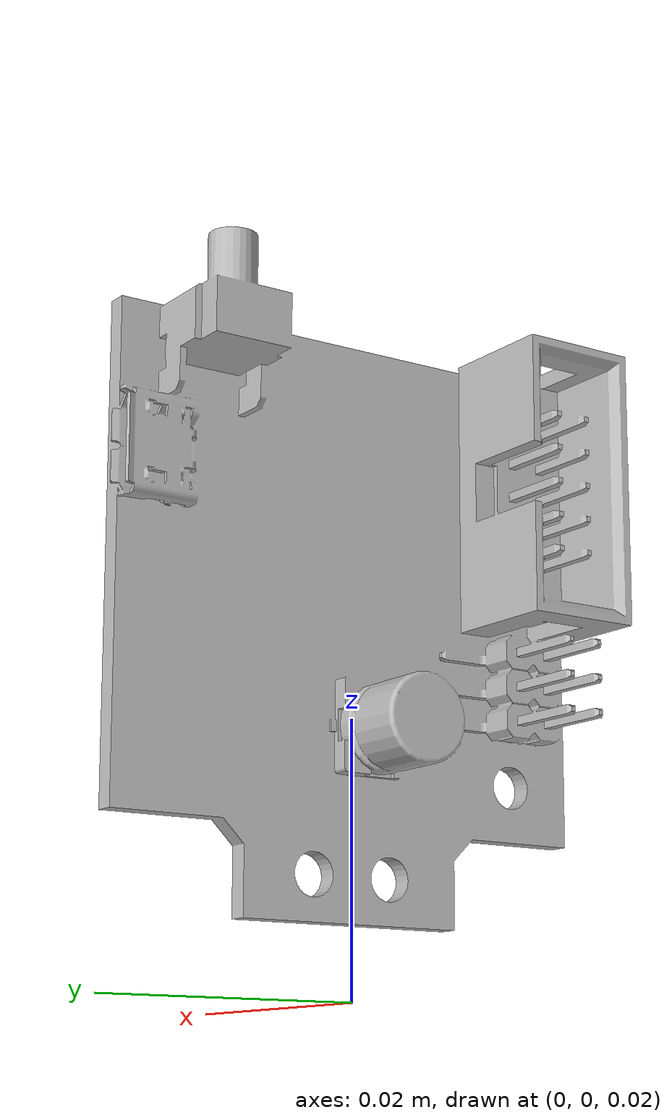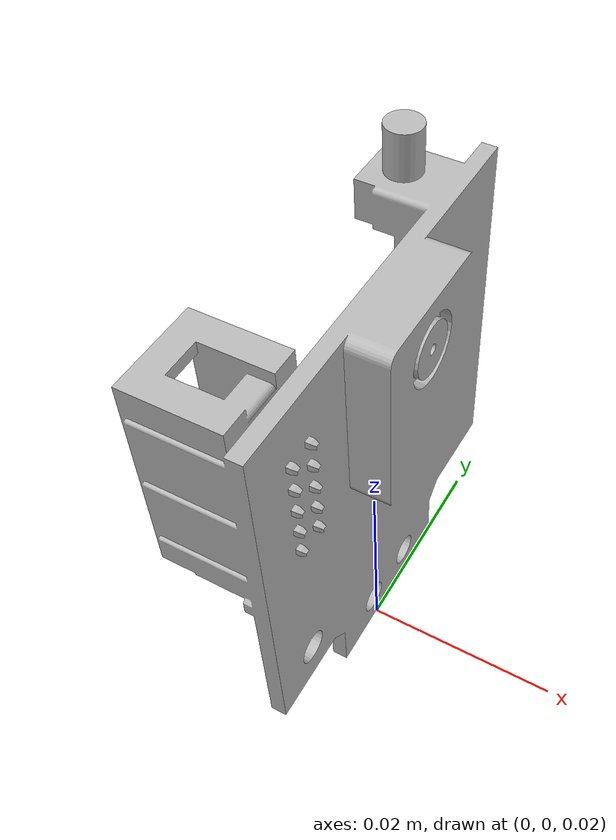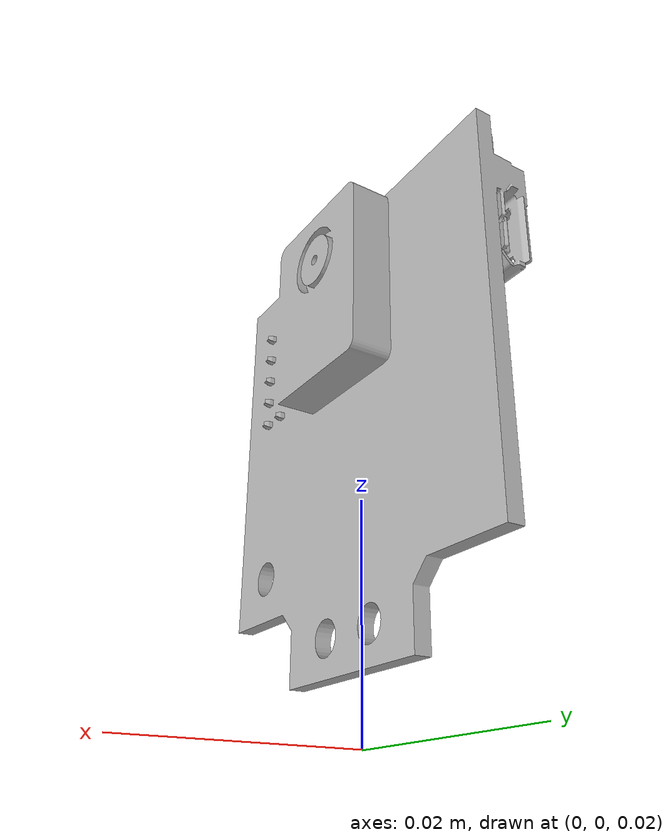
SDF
<?xml version='1.0' ?>
<sdf version='1.5'>
  <model name='frontcam'>
  	<pose>0 0 .05 0 0 0</pose>
    <static>false</static>
    <link name="frontcam_link">
      <visual name="frontcam_visual">
        <pose>0 0 0 1.57079632679 0 1.57079632679</pose>
        <geometry>
          <mesh>
            <uri>model://frontcam/meshes/frontcam.obj</uri>
            <scale>.001 .001 .001</scale>
          </mesh>
        </geometry>
      </visual>
      <!--Image sensor: Aptina MT9M114-->
      <sensor type="camera" name="frontcam_sensor">
        <always_on>true</always_on>
        <update_rate>30.0</update_rate>
        <camera name="head">
          <!--horizontal_fov should be 1.0472 but need it wider with lens-->
          <horizontal_fov>1.5</horizontal_fov>
          <image>
            <width>1296</width>
            <height>936</height> <!--should be 976 but need to be 936 for 18x scale-->
            <format>R8G8B8</format>
          </image>
          <clip>
            <near>0.02</near>
            <far>100</far>
          </clip>
          <lens>
            <type>gnomonical</type>
            <scale_to_hfov>1</scale_to_hfov>
          </lens>
          <noise>
            <type>gaussian</type>
            <mean>0.0</mean>
            <stddev>0.007</stddev>
          </noise>
        </camera>
        <plugin name="camera_controller" filename="libgazebo_ros_camera.so">
          <robotNamespace></robotNamespace>
          <cameraName>frontcam</cameraName>
          <imageTopicName>image_raw</imageTopicName>
          <cameraInfoTopicName>camera_info</cameraInfoTopicName>
          <frameName>camera_link</frameName>
          <hackBaseline>0.07</hackBaseline>
          <distortionK1>0.0</distortionK1>
          <distortionK2>0.0</distortionK2>
          <distortionK3>0.0</distortionK3>
          <distortionT1>0.0</distortionT1>
          <distortionT2>0.0</distortionT2>
        </plugin>
      </sensor>
    </link>
  </model>
</sdf>
